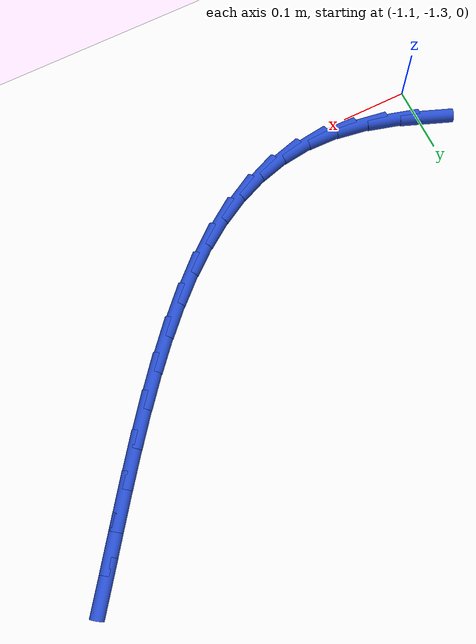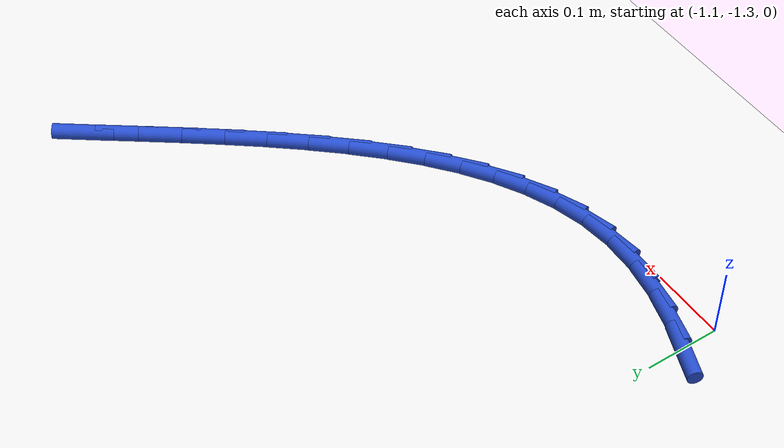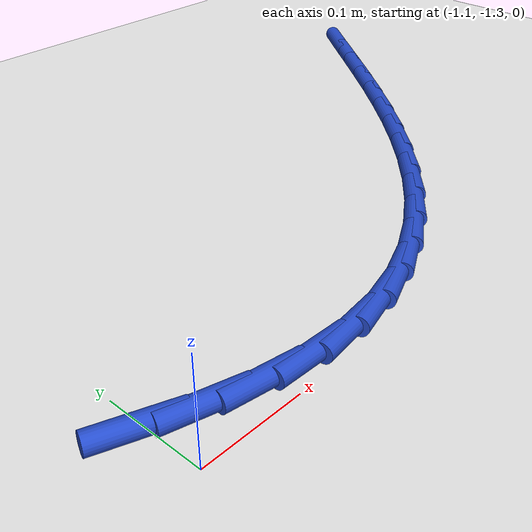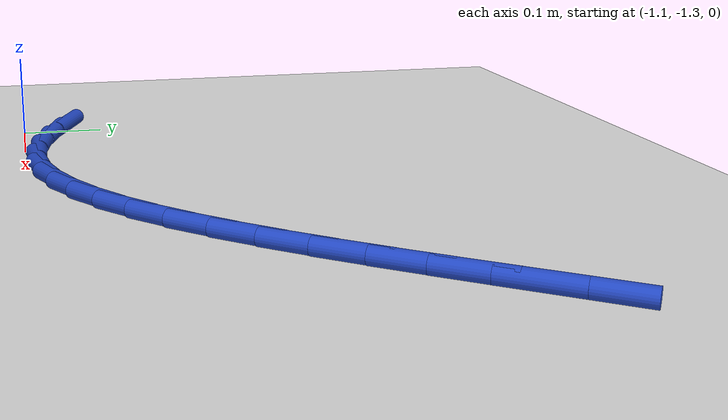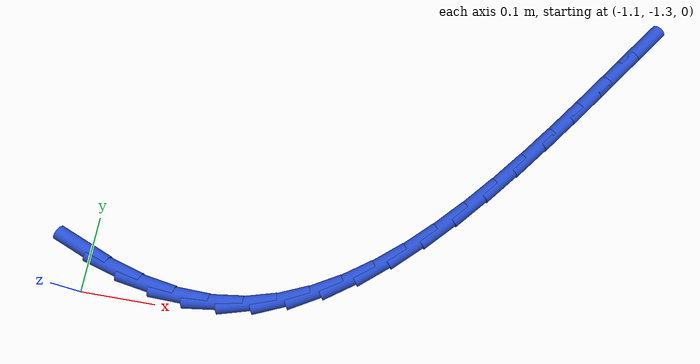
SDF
<sdf version="1.6">
 <world name="default">
  <model name="ground_plane">
   <static>1</static>
   <link name="link">
    <collision name="collision">
     <geometry><plane><normal>0 0 1</normal><size>100 100</size></plane></geometry>
     <surface><friction><ode><mu>100</mu><mu2>50</mu2></ode></friction></surface>
    </collision>
    <visual name="visual">
     <cast_shadows>0</cast_shadows>
     <geometry><plane><normal>0 0 1</normal><size>100 100</size></plane></geometry>
     <material>
      <script><uri>file://media/materials/scripts/gazebo.material</uri><name>Gazebo/WhiteGlow</name></script>
     </material>
    </visual>
   </link>
  </model>
  <model name="line">
   <link name="link_113">
    <pose>-1.1087514350937657 -1.2436368702430045 0.01 0 1.57 -0.3788650831468282</pose>
    <collision name="collision">
     <geometry><cylinder><radius>0.01</radius><length>0.08</length></cylinder></geometry>
    </collision>
    <visual name="visual">
     <material>
      <script><name>Gazebo/Blue</name><uri>file://media/materials/scripts/gazebo.material</uri></script>
     </material>
     <geometry><cylinder><radius>0.01</radius><length>0.08</length></cylinder></geometry>
    </visual>
   </link>
   <link name="link_114">
    <pose>-1.0619336118998415 -1.2622749214215274 0.01 0 1.57 -0.27966813515257277</pose>
    <collision name="collision">
     <geometry><cylinder><radius>0.01</radius><length>0.08</length></cylinder></geometry>
    </collision>
    <visual name="visual">
     <material>
      <script><name>Gazebo/Blue</name><uri>file://media/materials/scripts/gazebo.material</uri></script>
     </material>
     <geometry><cylinder><radius>0.01</radius><length>0.08</length></cylinder></geometry>
    </visual>
   </link>
   <link name="link_115">
    <pose>-1.015074282562344 -1.2757326890454663 0.01 0 1.57 -0.16418803285245143</pose>
    <collision name="collision">
     <geometry><cylinder><radius>0.01</radius><length>0.08</length></cylinder></geometry>
    </collision>
    <visual name="visual">
     <material>
      <script><name>Gazebo/Blue</name><uri>file://media/materials/scripts/gazebo.material</uri></script>
     </material>
     <geometry><cylinder><radius>0.01</radius><length>0.08</length></cylinder></geometry>
    </visual>
   </link>
   <link name="link_116">
    <pose>-0.9687278680190934 -1.2834113396151745 0.01 0 1.57 -0.02876379218010332</pose>
    <collision name="collision">
     <geometry><cylinder><radius>0.01</radius><length>0.08</length></cylinder></geometry>
    </collision>
    <visual name="visual">
     <material>
      <script><name>Gazebo/Blue</name><uri>file://media/materials/scripts/gazebo.material</uri></script>
     </material>
     <geometry><cylinder><radius>0.01</radius><length>0.08</length></cylinder></geometry>
    </visual>
   </link>
   <link name="link_117">
    <pose>-0.9234475877823877 -1.2847141314963595 0.01 0 1.57 0.12105351543861695</pose>
    <collision name="collision">
     <geometry><cylinder><radius>0.01</radius><length>0.08</length></cylinder></geometry>
    </collision>
    <visual name="visual">
     <material>
      <script><name>Gazebo/Blue</name><uri>file://media/materials/scripts/gazebo.material</uri></script>
     </material>
     <geometry><cylinder><radius>0.01</radius><length>0.08</length></cylinder></geometry>
    </visual>
   </link>
   <link name="link_118">
    <pose>-0.8795941927751865 -1.2793794402683791 0.01 0 1.57 0.26518212680167486</pose>
    <collision name="collision">
     <geometry><cylinder><radius>0.01</radius><length>0.08</length></cylinder></geometry>
    </collision>
    <visual name="visual">
     <material>
      <script><name>Gazebo/Blue</name><uri>file://media/materials/scripts/gazebo.material</uri></script>
     </material>
     <geometry><cylinder><radius>0.01</radius><length>0.08</length></cylinder></geometry>
    </visual>
   </link>
   <link name="link_119">
    <pose>-0.8371261646792061 -1.2678460537063165 0.01 0 1.57 0.39581183685615856</pose>
    <collision name="collision">
     <geometry><cylinder><radius>0.01</radius><length>0.08</length></cylinder></geometry>
    </collision>
    <visual name="visual">
     <material>
      <script><name>Gazebo/Blue</name><uri>file://media/materials/scripts/gazebo.material</uri></script>
     </material>
     <geometry><cylinder><radius>0.01</radius><length>0.08</length></cylinder></geometry>
    </visual>
   </link>
   <link name="link_120">
    <pose>-0.7959515295175195 -1.2506406105940555 0.01 0 1.57 0.5098379049371186</pose>
    <collision name="collision">
     <geometry><cylinder><radius>0.01</radius><length>0.08</length></cylinder></geometry>
    </collision>
    <visual name="visual">
     <material>
      <script><name>Gazebo/Blue</name><uri>file://media/materials/scripts/gazebo.material</uri></script>
     </material>
     <geometry><cylinder><radius>0.01</radius><length>0.08</length></cylinder></geometry>
    </visual>
   </link>
   <link name="link_121">
    <pose>-0.7559783133132032 -1.2282897497154817 0.01 0 1.57 0.6066561956672166</pose>
    <collision name="collision">
     <geometry><cylinder><radius>0.01</radius><length>0.08</length></cylinder></geometry>
    </collision>
    <visual name="visual">
     <material>
      <script><name>Gazebo/Blue</name><uri>file://media/materials/scripts/gazebo.material</uri></script>
     </material>
     <geometry><cylinder><radius>0.01</radius><length>0.08</length></cylinder></geometry>
    </visual>
   </link>
   <link name="link_122">
    <pose>-0.7171145420893329 -1.2013201098544806 0.01 0 1.57 0.6872569298050307</pose>
    <collision name="collision">
     <geometry><cylinder><radius>0.01</radius><length>0.08</length></cylinder></geometry>
    </collision>
    <visual name="visual">
     <material>
      <script><name>Gazebo/Blue</name><uri>file://media/materials/scripts/gazebo.material</uri></script>
     </material>
     <geometry><cylinder><radius>0.01</radius><length>0.08</length></cylinder></geometry>
    </visual>
   </link>
   <link name="link_123">
    <pose>-0.6792682418689827 -1.170258329794936 0.01 0 1.57 0.7533534674059685</pose>
    <collision name="collision">
     <geometry><cylinder><radius>0.01</radius><length>0.08</length></cylinder></geometry>
    </collision>
    <visual name="visual">
     <material>
      <script><name>Gazebo/Blue</name><uri>file://media/materials/scripts/gazebo.material</uri></script>
     </material>
     <geometry><cylinder><radius>0.01</radius><length>0.08</length></cylinder></geometry>
    </visual>
   </link>
   <link name="link_124">
    <pose>-0.6423474386752288 -1.135631048320734 0.01 0 1.57 0.8068022250970336</pose>
    <collision name="collision">
     <geometry><cylinder><radius>0.01</radius><length>0.08</length></cylinder></geometry>
    </collision>
    <visual name="visual">
     <material>
      <script><name>Gazebo/Blue</name><uri>file://media/materials/scripts/gazebo.material</uri></script>
     </material>
     <geometry><cylinder><radius>0.01</radius><length>0.08</length></cylinder></geometry>
    </visual>
   </link>
   <link name="link_125">
    <pose>-0.6062601585311468 -1.0979649042157595 0.01 0 1.57 0.849299056103002</pose>
    <collision name="collision">
     <geometry><cylinder><radius>0.01</radius><length>0.08</length></cylinder></geometry>
    </collision>
    <visual name="visual">
     <material>
      <script><name>Gazebo/Blue</name><uri>file://media/materials/scripts/gazebo.material</uri></script>
     </material>
     <geometry><cylinder><radius>0.01</radius><length>0.08</length></cylinder></geometry>
    </visual>
   </link>
   <link name="link_126">
    <pose>-0.5709144274598107 -1.0577865362638967 0.01 0 1.57 0.8822550386316603</pose>
    <collision name="collision">
     <geometry><cylinder><radius>0.01</radius><length>0.08</length></cylinder></geometry>
    </collision>
    <visual name="visual">
     <material>
      <script><name>Gazebo/Blue</name><uri>file://media/materials/scripts/gazebo.material</uri></script>
     </material>
     <geometry><cylinder><radius>0.01</radius><length>0.08</length></cylinder></geometry>
    </visual>
   </link>
   <link name="link_127">
    <pose>-0.5362182714842972 -1.015622583249032 0.01 0 1.57 0.9067658799186663</pose>
    <collision name="collision">
     <geometry><cylinder><radius>0.01</radius><length>0.08</length></cylinder></geometry>
    </collision>
    <visual name="visual">
     <material>
      <script><name>Gazebo/Blue</name><uri>file://media/materials/scripts/gazebo.material</uri></script>
     </material>
     <geometry><cylinder><radius>0.01</radius><length>0.08</length></cylinder></geometry>
    </visual>
   </link>
   <link name="link_128">
    <pose>-0.5020797166276805 -0.9719996839550487 0.01 0 1.57 0.9236206466484841</pose>
    <collision name="collision">
     <geometry><cylinder><radius>0.01</radius><length>0.08</length></cylinder></geometry>
    </collision>
    <visual name="visual">
     <material>
      <script><name>Gazebo/Blue</name><uri>file://media/materials/scripts/gazebo.material</uri></script>
     </material>
     <geometry><cylinder><radius>0.01</radius><length>0.08</length></cylinder></geometry>
    </visual>
   </link>
   <link name="link_129">
    <pose>-0.4684067889130364 -0.9274444771658324 0.01 0 1.57 0.9333204554329532</pose>
    <collision name="collision">
     <geometry><cylinder><radius>0.01</radius><length>0.08</length></cylinder></geometry>
    </collision>
    <visual name="visual">
     <material>
      <script><name>Gazebo/Blue</name><uri>file://media/materials/scripts/gazebo.material</uri></script>
     </material>
     <geometry><cylinder><radius>0.01</radius><length>0.08</length></cylinder></geometry>
    </visual>
   </link>
   <link name="link_130">
    <pose>-0.43510751436344086 -0.8824836016652697 0.01 0 1.57 0.9360924970842581</pose>
    <collision name="collision">
     <geometry><cylinder><radius>0.01</radius><length>0.08</length></cylinder></geometry>
    </collision>
    <visual name="visual">
     <material>
      <script><name>Gazebo/Blue</name><uri>file://media/materials/scripts/gazebo.material</uri></script>
     </material>
     <geometry><cylinder><radius>0.01</radius><length>0.08</length></cylinder></geometry>
    </visual>
   </link>
   <link name="link_131">
    <pose>-0.40208991900196783 -0.837643696237243 0.01 0 1.57 0.9318921555803621</pose>
    <collision name="collision">
     <geometry><cylinder><radius>0.01</radius><length>0.08</length></cylinder></geometry>
    </collision>
    <visual name="visual">
     <material>
      <script><name>Gazebo/Blue</name><uri>file://media/materials/scripts/gazebo.material</uri></script>
     </material>
     <geometry><cylinder><radius>0.01</radius><length>0.08</length></cylinder></geometry>
    </visual>
   </link>
  </model>
 </world>
</sdf>
